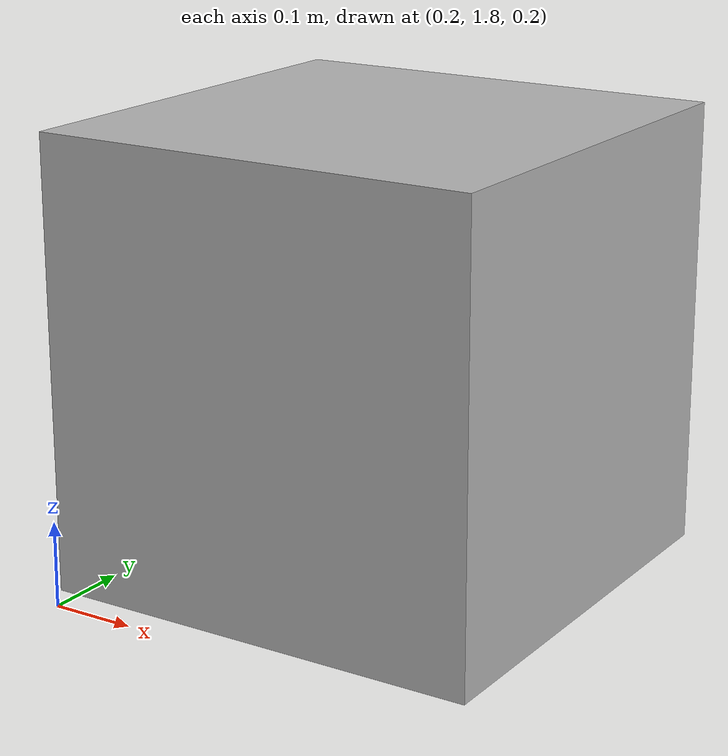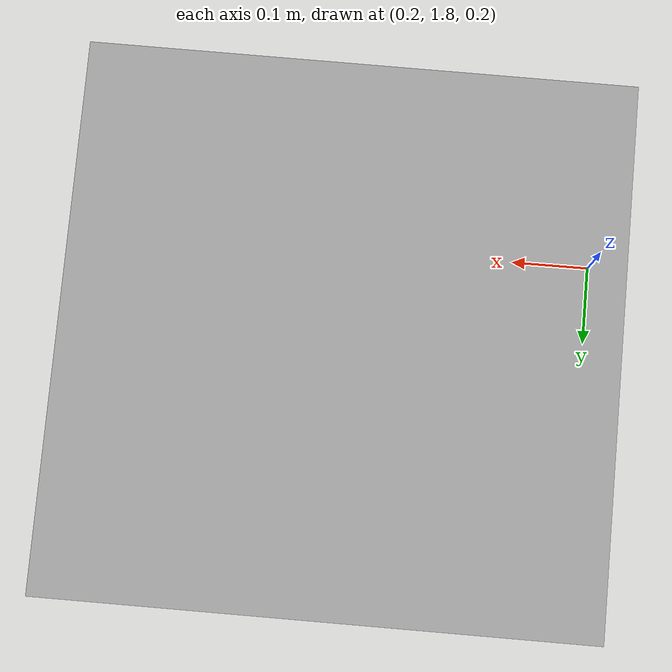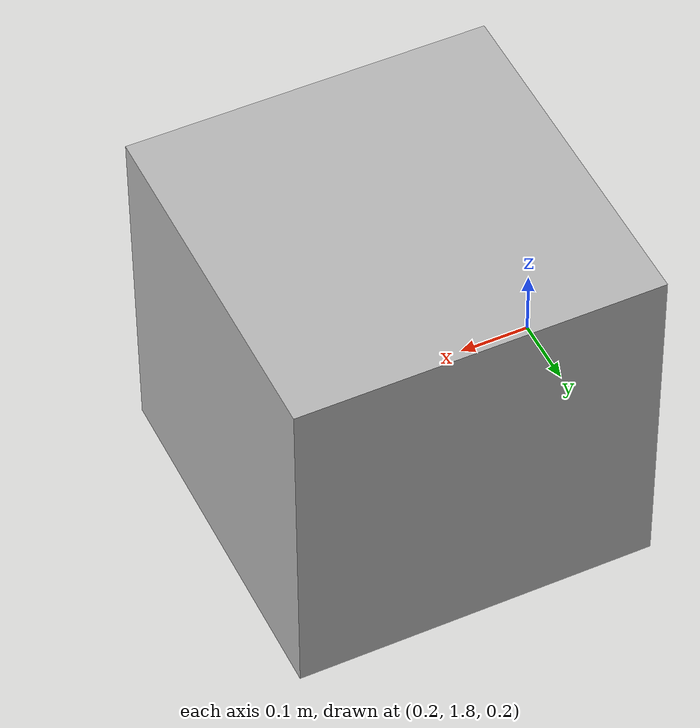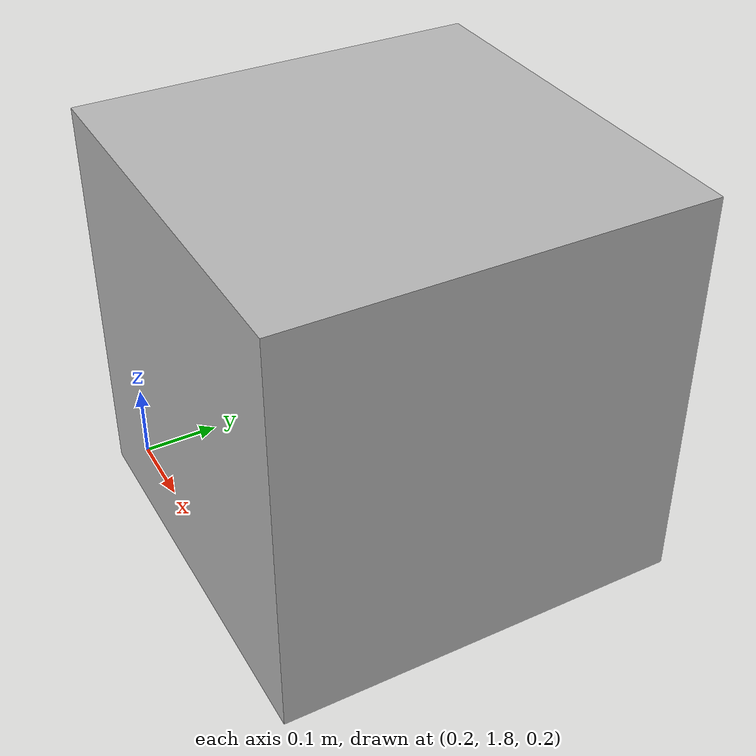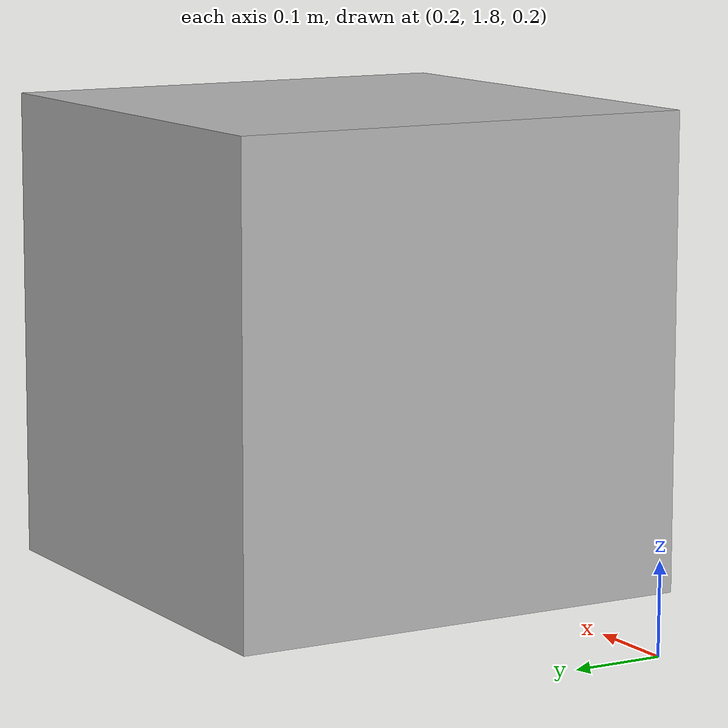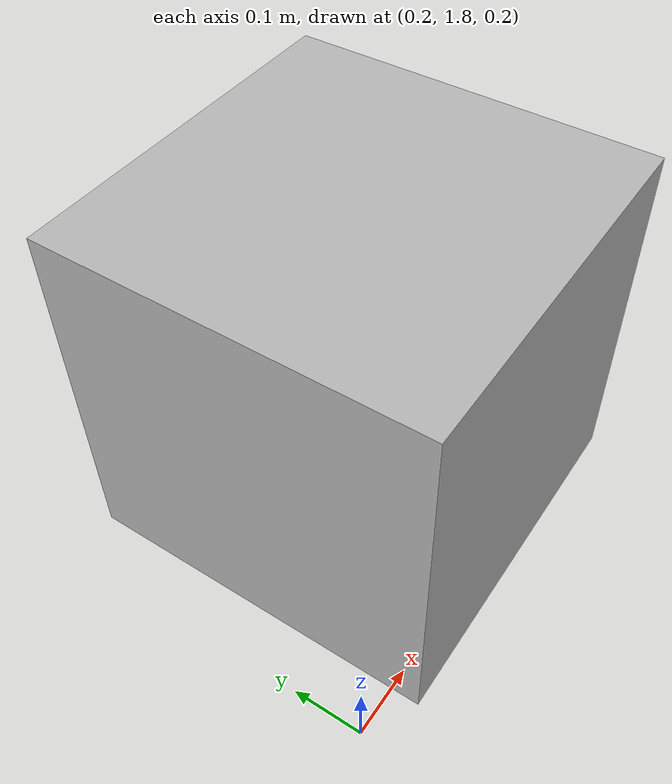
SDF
<?xml version="1.0"?>
<sdf version="1.4">
<model name="minibox">
      <pose>0.5 2 0.5 0 0 0</pose>
      <link name="link">
        <collision name="collision">
          <geometry>
            <box>
              <size>0.5 0.5 0.5</size>
            </box>
          </geometry>
        </collision>
	<inertial>
        <mass>0.01</mass>

      </inertial>

        <visual name="visual">
          <geometry>
            <box>
              <size>0.5 0.5 0.5</size>
            </box>
          </geometry>
        </visual>
      </link>
    </model>
</sdf>
